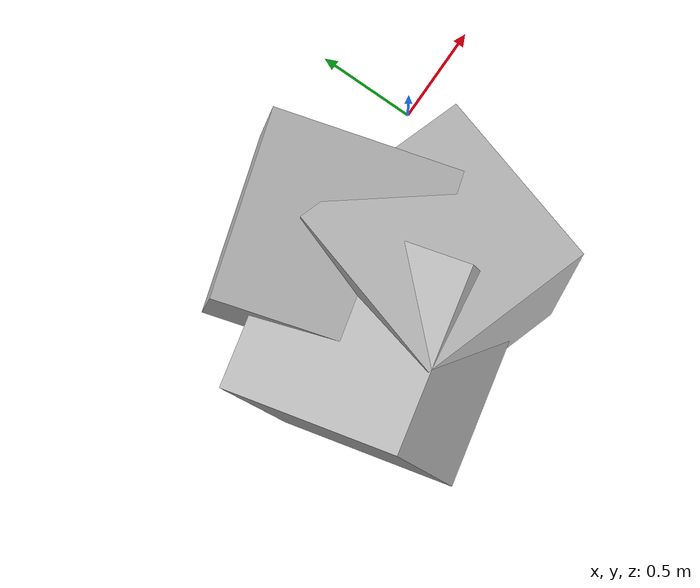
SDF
<sdf version="1.6">
  <model name="dvrk_psm">

  <include>
    <uri>model://PSM</uri>
      <name>PSM1</name>
      <pose> -0.5 -0.5 -0.5 -0.1 0.2 -0.3</pose>
  </include>

  <include>
    <uri>model://PSM</uri>
      <name>PSM2</name>
      <pose>-0.7 0 -0.5 0.12 0 0.3</pose>
  </include>

  <include>
    <uri>model://PSM</uri>
      <name>PSM3</name>
      <pose>-1 -0.5 -0.5 0 0.32 1.8</pose>
  </include>

  <joint name='PSM1::rev_joint' type='fixed'>
   <child>PSM1::base_link</child>
   <parent>world</parent>
 </joint>

  <joint name='PSM2::rev_joint' type='fixed'>
   <child>PSM2::base_link</child>
   <parent>world</parent>
 </joint>

  <joint name='PSM3::rev_joint' type='fixed'>
   <child>PSM3::base_link</child>
   <parent>world</parent>
 </joint>

 <plugin name='dvrk_plugins' filename='libdvrk_plugins.so'/>
 </model>
</sdf>

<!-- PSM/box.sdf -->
<sdf version="1.4">
<model name="my_model">
  <pose>0 0 0 0 0 0</pose>
  <static>true</static>
    <link name="link">
      <inertial>
        <mass>1.0</mass>
        <inertia> <!-- inertias are tricky to compute -->
          <!-- http://gazebosim.org/tutorials?tut=inertia&cat=build_robot -->
          <ixx>0.083</ixx>       <!-- for a box: ixx = 0.083 * mass * (y*y + z*z) -->
          <ixy>0.0</ixy>         <!-- for a box: ixy = 0 -->
          <ixz>0.0</ixz>         <!-- for a box: ixz = 0 -->
          <iyy>0.083</iyy>       <!-- for a box: iyy = 0.083 * mass * (x*x + z*z) -->
          <iyz>0.0</iyz>         <!-- for a box: iyz = 0 -->
          <izz>0.083</izz>       <!-- for a box: izz = 0.083 * mass * (x*x + y*y) -->
        </inertia>
      </inertial>
      <collision name="collision">
        <geometry>
          <box>
            <size>1 1 1</size>
          </box>
        </geometry>
      </collision>
      <visual name="visual">
        <geometry>
          <box>
            <size>1 1 1</size>
          </box>
        </geometry>
      </visual>
    </link>
  </model>
</sdf>
